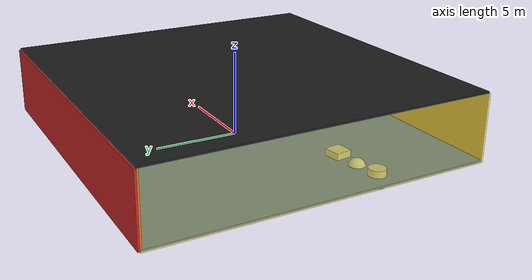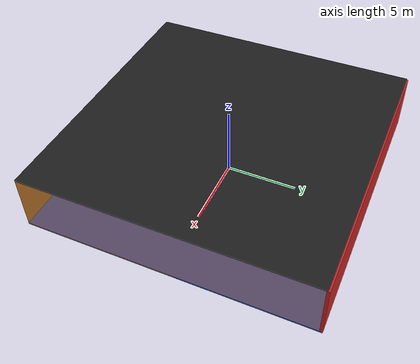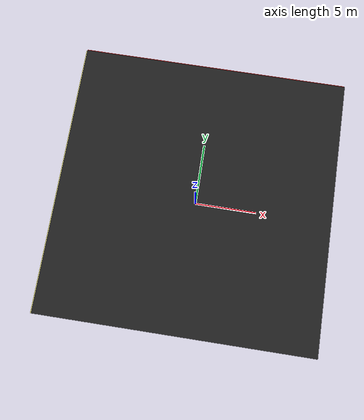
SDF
<sdf version="1.4">
 <world name="default">
  <physics type="ode">
   <max_step_size>0.001</max_step_size>
   <real_time_factor>1</real_time_factor>
   <real_time_update_rate>1000</real_time_update_rate>
   <gravity>0 0 -9.8</gravity>
  </physics>
  <scene><ambient>0.4 0.4 0.4 1</ambient><background>0.7 0.7 0.7 1</background><shadows>1</shadows></scene>
  <model name="Surrounding">
   <static>1</static>
   <link name="Ceiling">
    <collision name="Ceiling_Collision"><geometry><box><size>20 20 0.1</size></box></geometry></collision>
    <visual name="Ceiling_Visual">
     <geometry><box><size>20 20 0.1</size></box></geometry>
     <material>
      <script><uri>file://media/materials/scripts/gazebo.material</uri><name>Gazebo/Black</name></script>
     </material>
    </visual>
    <pose>0 0 4.05 0 0 0</pose>
   </link>
   <link name="Wall_South">
    <collision name="Wall_South_Collision">
     <geometry><box><size>20 0 4</size></box></geometry>
     <pose>0 0 2 0 -0 0</pose>
    </collision>
    <visual name="Wall_South_Visual">
     <pose>0 0 2 0 -0 0</pose>
     <geometry><box><size>20 0 4</size></box></geometry>
     <material>
      <script><uri>file://media/materials/scripts/gazebo.material</uri><name>Gazebo/Wood</name></script>
     </material>
    </visual>
    <velocity_decay><linear>0</linear><angular>0</angular></velocity_decay>
    <pose>0 -10 0 0 -0 0</pose>
   </link>
   <link name="Wall_East">
    <collision name="Wall_21_Collision">
     <geometry><box><size>20 0 4</size></box></geometry>
     <pose>0 0 2 0 -0 0</pose>
    </collision>
    <visual name="Wall_21_Visual">
     <pose>0 0 2 0 -0 0</pose>
     <geometry><box><size>20 0 4</size></box></geometry>
     <material>
      <script>
       <uri>file://media/materials/scripts/gazebo.material</uri>
       <name>Gazebo/OrangeTransparent</name>
      </script>
     </material>
    </visual>
    <velocity_decay><linear>0</linear><angular>0</angular></velocity_decay>
    <pose>10 0 0 0 -0 1.5708</pose>
   </link>
   <link name="Wall_North">
    <collision name="Wall_22_Collision">
     <geometry><box><size>20 0.2 4</size></box></geometry>
     <pose>0 0 2 0 -0 0</pose>
    </collision>
    <visual name="Wall_22_Visual">
     <pose>0 0 2 0 -0 0</pose>
     <geometry><box><size>20 0.2 4</size></box></geometry>
     <material>
      <script><uri>file://media/materials/scripts/gazebo.material</uri><name>Gazebo/RedBright</name></script>
     </material>
    </visual>
    <velocity_decay><linear>0</linear><angular>0</angular></velocity_decay>
    <pose>0 10 0 0 -0 0</pose>
   </link>
   <link name="Wall_West">
    <collision name="Wall_23_Collision">
     <geometry><box><size>20 0.2 4</size></box></geometry>
     <pose>0 0 2 0 -0 0</pose>
    </collision>
    <visual name="Wall_23_Visual">
     <pose>0 0 2 0 -0 0</pose>
     <geometry><box><size>20 0.2 4</size></box></geometry>
     <material>
      <script>
       <uri>file://media/materials/scripts/gazebo.material</uri>
       <name>Gazebo/YellowTransparent</name>
      </script>
     </material>
    </visual>
    <velocity_decay><linear>0</linear><angular>0</angular></velocity_decay>
    <pose>-10 0 0 0 0 -1.5708</pose>
   </link>
   <link name="Ground_link">
    <collision name="collision">
     <pose>0 0 .05 0 -0 0</pose>
     <geometry><box><size>20 20 0.1</size></box></geometry>
    </collision>
    <visual name="visual">
     <pose>0 0 .05 0 -0 0</pose>
     <geometry><box><size>20 20 0.1</size></box></geometry>
     <material>
      <script><uri>file://media/materials/scripts/gazebo.material</uri><name>Gazebo/BlueGlow</name></script>
     </material>
    </visual>
   </link>
   <static>1</static>
  </model>
  <spherical_coordinates>
   <surface_model>EARTH_WGS84</surface_model>
   <latitude_deg>0</latitude_deg>
   <longitude_deg>0</longitude_deg>
   <elevation>0</elevation>
   <heading_deg>0</heading_deg>
  </spherical_coordinates>
  <light name="lightball_0" type="diffuse">
   <diffuse>0.8 0.8 0.8 1</diffuse>
   <specular>0.2 0.2 0.2 1</specular>
   <attenuation>
    <range>100</range>
    <constant>0.7</constant>
    <linear>0.01</linear>
    <quadratic>0.001</quadratic>
   </attenuation>
   <direction>-0.5 0.1 -0.9</direction>
   <pose>8.65281474434 8.39345888534 0.89447713856 0 0 0</pose>
  </light>
  <light name="lightball_1" type="diffuse">
   <diffuse>0.8 0.8 0.8 1</diffuse>
   <specular>0.2 0.2 0.2 1</specular>
   <attenuation>
    <range>100</range>
    <constant>0.7</constant>
    <linear>0.01</linear>
    <quadratic>0.001</quadratic>
   </attenuation>
   <direction>-0.5 0.1 -0.9</direction>
   <pose>8.41035587488 -5.20036842922 1.63652360956 0 0 0</pose>
  </light>
  <light name="lightball_2" type="diffuse">
   <diffuse>0.8 0.8 0.8 1</diffuse>
   <specular>0.2 0.2 0.2 1</specular>
   <attenuation>
    <range>100</range>
    <constant>0.7</constant>
    <linear>0.01</linear>
    <quadratic>0.001</quadratic>
   </attenuation>
   <direction>-0.5 0.1 -0.9</direction>
   <pose>-4.19227090441 4.96494776074 0.939628875445 0 0 0</pose>
  </light>
  <light name="lightball_3" type="diffuse">
   <diffuse>0.8 0.8 0.8 1</diffuse>
   <specular>0.2 0.2 0.2 1</specular>
   <attenuation>
    <range>100</range>
    <constant>0.7</constant>
    <linear>0.01</linear>
    <quadratic>0.001</quadratic>
   </attenuation>
   <direction>-0.5 0.1 -0.9</direction>
   <pose>9.07524815713 -0.236783224942 2.45281485898 0 0 0</pose>
  </light>
  <light name="lightball_4" type="diffuse">
   <diffuse>0.8 0.8 0.8 1</diffuse>
   <specular>0.2 0.2 0.2 1</specular>
   <attenuation>
    <range>100</range>
    <constant>0.7</constant>
    <linear>0.01</linear>
    <quadratic>0.001</quadratic>
   </attenuation>
   <direction>-0.5 0.1 -0.9</direction>
   <pose>0.508481973488 4.07805317914 3.71439354681 0 0 0</pose>
  </light>
  <light name="lightball_5" type="diffuse">
   <diffuse>0.8 0.8 0.8 1</diffuse>
   <specular>0.2 0.2 0.2 1</specular>
   <attenuation>
    <range>100</range>
    <constant>0.7</constant>
    <linear>0.01</linear>
    <quadratic>0.001</quadratic>
   </attenuation>
   <direction>-0.5 0.1 -0.9</direction>
   <pose>2.47971796149 -9.00512953483 1.95014019484 0 0 0</pose>
  </light>
  <light name="lightball_6" type="diffuse">
   <diffuse>0.8 0.8 0.8 1</diffuse>
   <specular>0.2 0.2 0.2 1</specular>
   <attenuation>
    <range>100</range>
    <constant>0.7</constant>
    <linear>0.01</linear>
    <quadratic>0.001</quadratic>
   </attenuation>
   <direction>-0.5 0.1 -0.9</direction>
   <pose>-2.2877404376 -9.49418970092 2.05457751822 0 0 0</pose>
  </light>
  <light name="lightball_7" type="diffuse">
   <diffuse>0.8 0.8 0.8 1</diffuse>
   <specular>0.2 0.2 0.2 1</specular>
   <attenuation>
    <range>100</range>
    <constant>0.7</constant>
    <linear>0.01</linear>
    <quadratic>0.001</quadratic>
   </attenuation>
   <direction>-0.5 0.1 -0.9</direction>
   <pose>-1.48790767982 1.47572373826 2.49109855702 0 0 0</pose>
  </light>
  <light name="lightball_8" type="diffuse">
   <diffuse>0.8 0.8 0.8 1</diffuse>
   <specular>0.2 0.2 0.2 1</specular>
   <attenuation>
    <range>100</range>
    <constant>0.7</constant>
    <linear>0.01</linear>
    <quadratic>0.001</quadratic>
   </attenuation>
   <direction>-0.5 0.1 -0.9</direction>
   <pose>7.28808378371 -9.95582252167 3.78214664978 0 0 0</pose>
  </light>
  <light name="lightball_9" type="diffuse">
   <diffuse>0.8 0.8 0.8 1</diffuse>
   <specular>0.2 0.2 0.2 1</specular>
   <attenuation>
    <range>100</range>
    <constant>0.7</constant>
    <linear>0.01</linear>
    <quadratic>0.001</quadratic>
   </attenuation>
   <direction>-0.5 0.1 -0.9</direction>
   <pose>0.218977311218 1.74730240214 1.34667714582 0 0 0</pose>
  </light>
  <include>
   <uri>model://textured_shapes</uri>
   <pose>-7.28103777252 -3.60617007348 0 0 0 1.70416687018</pose>
  </include>
  <include>
   <uri>model://textured_shapes</uri>
   <pose>-0.577127153551 -8.11708304203 0 0 0 0.282714994953</pose>
  </include>
 </world>
</sdf>

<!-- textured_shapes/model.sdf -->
<sdf version="1.6">
  <model name="textured_shapes">
    <pose>0 0 0.5 0 0 0</pose>
    <link name="box">
      <pose>0 -1.5 0 0 0 0</pose>
      <collision name="collision">
        <geometry>
          <box>
            <size>1 1 1</size>
          </box>
        </geometry>
      </collision>
      <visual name="visual">
        <geometry>
          <box>
            <size>1 1 1</size>
          </box>
        </geometry>
        <material>
          <script>
            <uri>model://../model_source/models/textured_shapes/materials/scripts</uri>
            <uri>model://../model_source/models/textured_shapes/materials/textures</uri>
            <name>TexturedShape/Squares</name>
          </script>
        </material>
      </visual>
    </link>
    <link name="sphere">
      <collision name="collision">
        <geometry>
          <sphere>
            <radius>0.5</radius>
          </sphere>
        </geometry>
      </collision>
      <visual name="visual">
        <geometry>
          <sphere>
            <radius>0.5</radius>
          </sphere>
        </geometry>
        <material>
          <script>
            <uri>model://../model_source/models/textured_shapes/materials/scripts</uri>
            <uri>model://../model_source/models/textured_shapes/materials/textures</uri>
            <name>TexturedShape/Squares</name>
          </script>
        </material>
      </visual>
    </link>
    <link name="cylinder">
      <pose>0 1.5 0 0 0 0</pose>
      <collision name="collision">
        <geometry>
          <cylinder>
            <radius>0.5</radius>
            <length>1</length>
          </cylinder>
        </geometry>
      </collision>
      <visual name="visual">
        <geometry>
          <cylinder>
            <radius>0.5</radius>
            <length>1</length>
          </cylinder>
        </geometry>
        <material>
          <script>
            <uri>model://../model_source/models/textured_shapes/materials/scripts</uri>
            <uri>model://../model_source/models/textured_shapes/materials/textures</uri>
            <name>TexturedShape/Squares</name>
          </script>
        </material>
      </visual>
    </link>
  </model>
</sdf>
